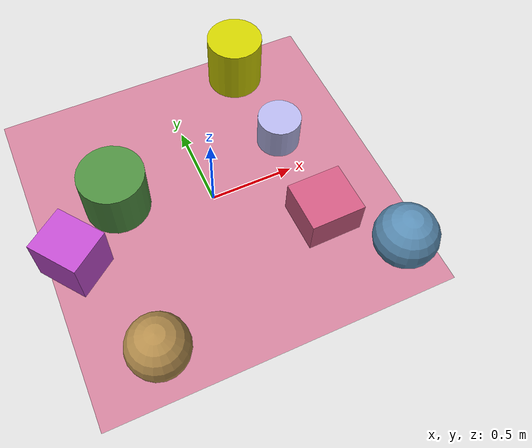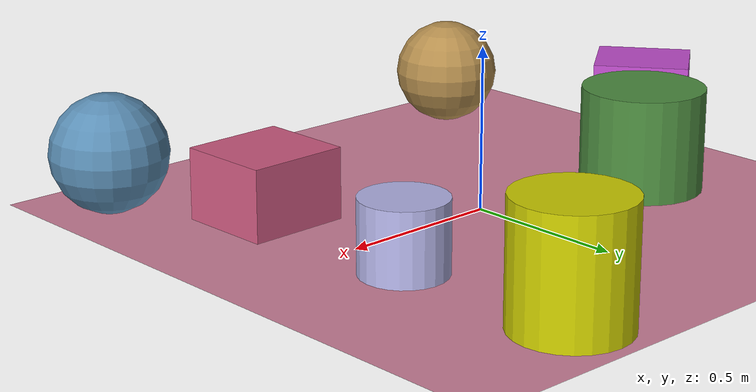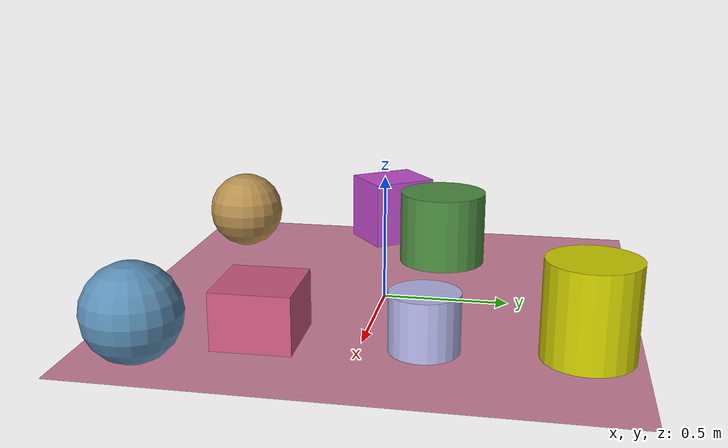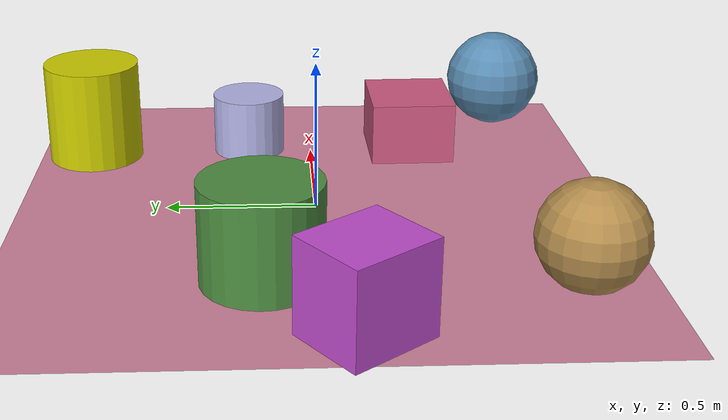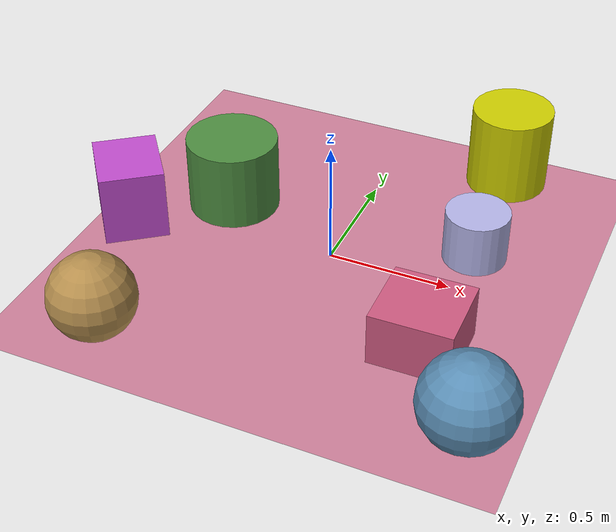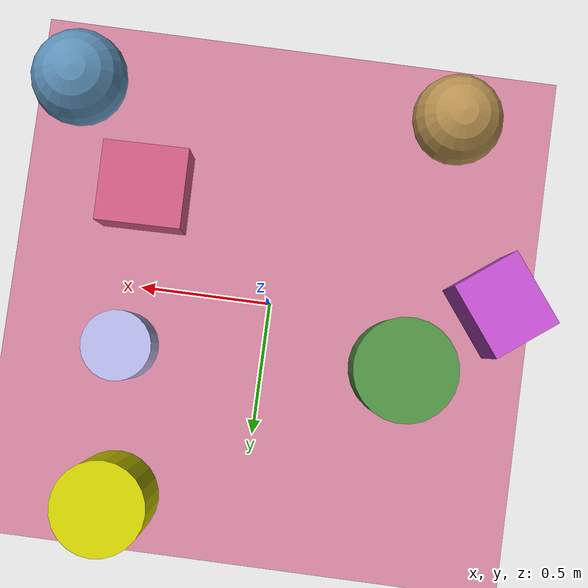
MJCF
<mujoco>
   <asset>
<texture type="skybox" builtin="gradient" rgb1="0.7 0.1 0.2" rgb2="0.6 0.5 1.0" width="256" height="256"/>
<texture name="flat_0" builtin="flat" rgb1="0.7 0.7 0.9" rgb2="0.7 0.7 0.9"  width="200" height="200"/>
<texture name="checker_1" builtin="checker" rgb1="0.5 0.1 0.2" rgb2="0.9 1.0 0.4" width="200" height="200"/>
<texture name="gradient_2" builtin="gradient" rgb1="0.5 0.5 0.0" rgb2="0.1 0.6 0.5" width="200" height="200"/>
<texture name="gradient_3" builtin="gradient" rgb1="0.6 0.0 0.7" rgb2="0.9 0.6 0.9" width="200" height="200"/>
<texture name="checker_4" builtin="checker" rgb1="0.5 0.1 1.0" rgb2="0.2 1.0 0.4" width="200" height="200"/>
<texture name="flat_5" builtin="flat" rgb1="0.8 0.8 0.0" rgb2="0.8 0.8 0.0"  width="200" height="200"/>
<texture name="checker_6" builtin="checker" rgb1="0.9 0.1 0.4" rgb2="0.7 0.6 0.6" width="200" height="200"/><material name="flat_0_mat" reflectance="0" texture="flat_0" texuniform="true"/>
<material name="checker_1_mat" reflectance="0" texrepeat="6 6" texture="checker_1" texuniform="false" />
<material name="gradient_2_mat" reflectance="0" texture="gradient_2" texuniform="true"/>
<material name="gradient_3_mat" reflectance="0" texture="gradient_3" texuniform="true"/>
<material name="checker_4_mat" reflectance="0" texrepeat="7 7" texture="checker_4" texuniform="false" />
<material name="flat_5_mat" reflectance="0" texture="flat_5" texuniform="true"/>
<material name="checker_6_mat" reflectance="0" texrepeat="6 6" texture="checker_6" texuniform="false" />
   </asset>

   <worldbody>
      <light diffuse=".9 .9 .9" pos="0 0 3" dir="0 0 -1"/>
     <geom type="plane" size="1 1 0.1" rgba="0.8 0.5 0.6 1"/>
<geom type="cylinder" pos="0.53 0.23 0.11" size="0.13 0.11 0.11" material="flat_0_mat" euler="0 0 57" />
<geom type="sphere" pos="-0.61 -0.77 0.17" size="0.17 0.17 0.17" material="checker_1_mat" euler="0 0 10" />
<geom type="cylinder" pos="-0.52 0.18 0.16" size="0.19 0.16 0.16" material="gradient_2_mat" euler="0 0 42" />
<geom type="box" pos="-0.85 -0.1 0.15" size="0.13 0.15 0.15" material="gradient_3_mat" euler="0 0 37" />
<geom type="sphere" pos="0.81 -0.74 0.18" size="0.18 0.18 0.18" material="checker_4_mat" euler="0 0 40" />
<geom type="cylinder" pos="0.49 0.8 0.18" size="0.17 0.18 0.18" material="flat_5_mat" euler="0 0 60" />
<geom type="box" pos="0.52 -0.37 0.11" size="0.16 0.15 0.11" material="checker_6_mat" euler="0 0 1" /><camera euler="60 0 180" fovy="60" name="camera1" pos="-0.2 -1.5 1"></camera>   </worldbody>
</mujoco>
